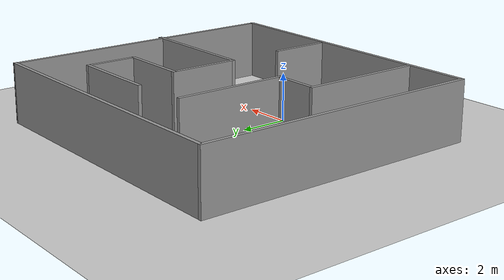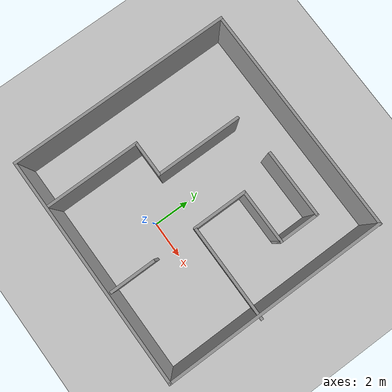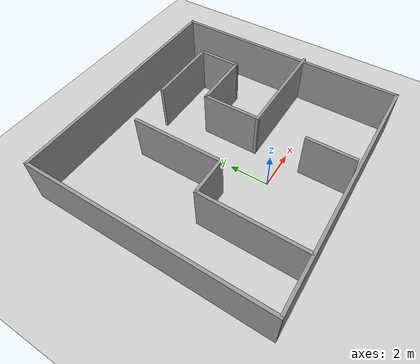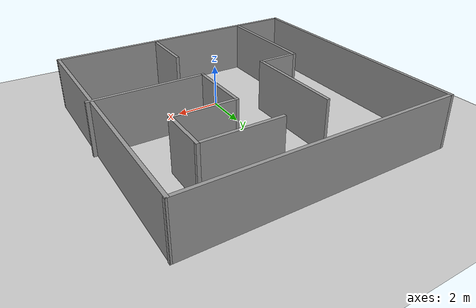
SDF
<sdf version="1.7">
 <world name="default">
  <light name="sun" type="directional">
   <pose>0 0 10 0 -0 0</pose>
   <diffuse>0.8 0.8 0.8 1</diffuse>
   <specular>0.2 0.2 0.2 1</specular>
   <attenuation>
    <range>1000</range>
    <constant>0.9</constant>
    <linear>0.01</linear>
    <quadratic>0.001</quadratic>
   </attenuation>
   <direction>-0.5 0.1 -0.9</direction>
   <spot><inner_angle>0</inner_angle><outer_angle>0</outer_angle><falloff>0</falloff></spot>
  </light>
  <model name="ground_plane">
   <static>1</static>
   <link name="link">
    <collision name="collision">
     <geometry><plane><normal>0 0 1</normal><size>100 100</size></plane></geometry>
     <surface>
      <contact><collide_bitmask>65535</collide_bitmask></contact>
      <friction><ode><mu>100</mu><mu2>50</mu2></ode></friction>
     </surface>
    </collision>
    <visual name="visual">
     <cast_shadows>0</cast_shadows>
     <geometry><plane><normal>0 0 1</normal><size>100 100</size></plane></geometry>
     <material>
      <script><uri>file://media/materials/scripts/gazebo.material</uri><name>Gazebo/Grey</name></script>
     </material>
    </visual>
   </link>
  </model>
  <gravity>0 0 -9.8</gravity>
  <magnetic_field>6e-06 2.3e-05 -4.2e-05</magnetic_field>
  <atmosphere type="adiabatic"/>
  <physics type="ode">
   <max_step_size>0.001</max_step_size>
   <real_time_factor>1</real_time_factor>
   <real_time_update_rate>1000</real_time_update_rate>
  </physics>
  <scene><ambient>0.4 0.4 0.4 1</ambient><background>0.7 0.7 0.7 1</background><shadows>1</shadows></scene>
  <audio><device>default</device></audio>
  <spherical_coordinates>
   <surface_model>EARTH_WGS84</surface_model>
   <latitude_deg>0</latitude_deg>
   <longitude_deg>0</longitude_deg>
   <elevation>0</elevation>
   <heading_deg>0</heading_deg>
  </spherical_coordinates>
  <model name="simple_world">
   <pose>0.218703 2.48564 0 0 -0 0</pose>
   <link name="Wall_11">
    <collision name="Wall_11_Collision">
     <geometry><box><size>5.25 0.15 2.5</size></box></geometry>
     <pose>0 0 1.25 0 -0 0</pose>
    </collision>
    <visual name="Wall_11_Visual">
     <pose>0 0 1.25 0 -0 0</pose>
     <geometry><box><size>5.25 0.15 2.5</size></box></geometry>
     <material>
      <script><uri>file://media/materials/scripts/gazebo.material</uri><name>Gazebo/Grey</name></script>
      <ambient>1 1 1 1</ambient>
     </material>
     <meta><layer>0</layer></meta>
    </visual>
    <pose>-3.69115 -3.43491 0 0 -0 1.5708</pose>
   </link>
   <link name="Wall_12">
    <collision name="Wall_12_Collision">
     <geometry><box><size>2 0.15 2.5</size></box></geometry>
     <pose>0 0 1.25 0 -0 0</pose>
    </collision>
    <visual name="Wall_12_Visual">
     <pose>0 0 1.25 0 -0 0</pose>
     <geometry><box><size>2 0.15 2.5</size></box></geometry>
     <material>
      <script><uri>file://media/materials/scripts/gazebo.material</uri><name>Gazebo/Grey</name></script>
      <ambient>1 1 1 1</ambient>
     </material>
     <meta><layer>0</layer></meta>
    </visual>
    <pose>-2.76615 -0.884914 0 0 -0 0</pose>
   </link>
   <link name="Wall_13">
    <collision name="Wall_13_Collision">
     <geometry><box><size>4.75 0.15 2.5</size></box></geometry>
     <pose>0 0 1.25 0 -0 0</pose>
    </collision>
    <visual name="Wall_13_Visual">
     <pose>0 0 1.25 0 -0 0</pose>
     <geometry><box><size>4.75 0.15 2.5</size></box></geometry>
     <material>
      <script><uri>file://media/materials/scripts/gazebo.material</uri><name>Gazebo/Grey</name></script>
      <ambient>1 1 1 1</ambient>
     </material>
     <meta><layer>0</layer></meta>
    </visual>
    <pose>-1.84115 1.41509 0 0 -0 1.5708</pose>
   </link>
   <link name="Wall_15">
    <collision name="Wall_15_Collision">
     <geometry><box><size>2.5 0.15 2.5</size></box></geometry>
     <pose>0 0 1.25 0 -0 0</pose>
    </collision>
    <visual name="Wall_15_Visual">
     <pose>0 0 1.25 0 -0 0</pose>
     <geometry><box><size>2.5 0.15 2.5</size></box></geometry>
     <material>
      <script><uri>file://media/materials/scripts/gazebo.material</uri><name>Gazebo/Grey</name></script>
      <ambient>1 1 1 1</ambient>
     </material>
     <meta><layer>0</layer></meta>
    </visual>
    <pose>1.28488 -4.65167 0 0 -0 -1.5708</pose>
   </link>
   <link name="Wall_17">
    <collision name="Wall_17_Collision">
     <geometry><box><size>5.25 0.15 2.5</size></box></geometry>
     <pose>0 0 1.25 0 -0 0</pose>
    </collision>
    <visual name="Wall_17_Visual">
     <pose>0 0 1.25 0 -0 0</pose>
     <geometry><box><size>5.25 0.15 2.5</size></box></geometry>
     <material>
      <script><uri>file://media/materials/scripts/gazebo.material</uri><name>Gazebo/Grey</name></script>
      <ambient>1 1 1 1</ambient>
     </material>
     <meta><layer>0</layer></meta>
    </visual>
    <pose>3.75137 -1.00888 0 0 -0 3.14159</pose>
   </link>
   <link name="Wall_18">
    <collision name="Wall_18_Collision">
     <geometry><box><size>3 0.15 2.5</size></box></geometry>
     <pose>0 0 1.25 0 -0 0</pose>
    </collision>
    <visual name="Wall_18_Visual">
     <pose>0 0 1.25 0 -0 0</pose>
     <geometry><box><size>3 0.15 2.5</size></box></geometry>
     <material>
      <script><uri>file://media/materials/scripts/gazebo.material</uri><name>Gazebo/Grey</name></script>
      <ambient>1 1 1 1</ambient>
     </material>
     <meta><layer>0</layer></meta>
    </visual>
    <pose>1.20137 0.416122 0 0 -0 1.5708</pose>
   </link>
   <link name="Wall_19">
    <collision name="Wall_19_Collision">
     <geometry><box><size>3 0.15 2.5</size></box></geometry>
     <pose>0 0 1.25 0 -0 0</pose>
    </collision>
    <visual name="Wall_19_Visual">
     <pose>0 0 1.25 0 -0 0</pose>
     <geometry><box><size>3 0.15 2.5</size></box></geometry>
     <material>
      <script><uri>file://media/materials/scripts/gazebo.material</uri><name>Gazebo/Grey</name></script>
      <ambient>1 1 1 1</ambient>
     </material>
     <meta><layer>0</layer></meta>
    </visual>
    <pose>2.62637 1.84112 0 0 -0 0</pose>
   </link>
   <link name="Wall_20">
    <collision name="Wall_20_Collision">
     <geometry><box><size>2.25 0.15 2.5</size></box></geometry>
     <pose>0 0 1.25 0 -0 0</pose>
    </collision>
    <visual name="Wall_20_Visual">
     <pose>0 0 1.25 0 -0 0</pose>
     <geometry><box><size>2.25 0.15 2.5</size></box></geometry>
     <material>
      <script><uri>file://media/materials/scripts/gazebo.material</uri><name>Gazebo/Grey</name></script>
      <ambient>1 1 1 1</ambient>
     </material>
     <meta><layer>0</layer></meta>
    </visual>
    <pose>4.05137 2.89112 0 0 -0 1.5708</pose>
   </link>
   <link name="Wall_21">
    <collision name="Wall_21_Collision">
     <geometry><box><size>3.75 0.15 2.5</size></box></geometry>
     <pose>0 0 1.25 0 -0 0</pose>
    </collision>
    <visual name="Wall_21_Visual">
     <pose>0 0 1.25 0 -0 0</pose>
     <geometry><box><size>3.75 0.15 2.5</size></box></geometry>
     <material>
      <script><uri>file://media/materials/scripts/gazebo.material</uri><name>Gazebo/Grey</name></script>
      <ambient>1 1 1 1</ambient>
     </material>
     <meta><layer>0</layer></meta>
    </visual>
    <pose>2.25137 3.94112 0 0 -0 3.14159</pose>
   </link>
   <link name="Wall_3">
    <collision name="Wall_3_Collision">
     <geometry><box><size>12.5 0.15 2.5</size></box></geometry>
     <pose>0 0 1.25 0 -0 0</pose>
    </collision>
    <visual name="Wall_3_Visual">
     <pose>0 0 1.25 0 -0 0</pose>
     <geometry><box><size>12.5 0.15 2.5</size></box></geometry>
     <material>
      <script><uri>file://media/materials/scripts/gazebo.material</uri><name>Gazebo/Grey</name></script>
      <ambient>1 1 1 1</ambient>
     </material>
     <meta><layer>0</layer></meta>
    </visual>
    <pose>-0.020767 -6.05025 0 0 -0 0</pose>
   </link>
   <link name="Wall_4">
    <collision name="Wall_4_Collision">
     <geometry><box><size>12.25 0.15 2.5</size></box></geometry>
     <pose>0 0 1.25 0 -0 0</pose>
    </collision>
    <visual name="Wall_4_Visual">
     <pose>0 0 1.25 0 -0 0</pose>
     <geometry><box><size>12.25 0.15 2.5</size></box></geometry>
     <material>
      <script><uri>file://media/materials/scripts/gazebo.material</uri><name>Gazebo/Grey</name></script>
      <ambient>1 1 1 1</ambient>
     </material>
     <meta><layer>0</layer></meta>
    </visual>
    <pose>6.1311 -0.000247 0 0 -0 1.57462</pose>
   </link>
   <link name="Wall_5">
    <collision name="Wall_5_Collision">
     <geometry><box><size>12.5 0.15 2.5</size></box></geometry>
     <pose>0 0 1.25 0 -0 0</pose>
    </collision>
    <visual name="Wall_5_Visual">
     <pose>0 0 1.25 0 -0 0</pose>
     <geometry><box><size>12.5 0.15 2.5</size></box></geometry>
     <material>
      <script><uri>file://media/materials/scripts/gazebo.material</uri><name>Gazebo/Grey</name></script>
      <ambient>1 1 1 1</ambient>
     </material>
     <meta><layer>0</layer></meta>
    </visual>
    <pose>-0.043898 6.04975 0 0 -0 3.14159</pose>
   </link>
   <link name="Wall_9">
    <collision name="Wall_9_Collision">
     <geometry><box><size>12.25 0.15 2.5</size></box></geometry>
     <pose>0 0 1.25 0 -0 0</pose>
    </collision>
    <visual name="Wall_9_Visual">
     <pose>0 0 1.25 0 -0 0</pose>
     <geometry><box><size>12.25 0.15 2.5</size></box></geometry>
     <material>
      <script><uri>file://media/materials/scripts/gazebo.material</uri><name>Gazebo/Grey</name></script>
      <ambient>1 1 1 1</ambient>
     </material>
     <meta><layer>0</layer></meta>
    </visual>
    <pose>-6.30137 0.000487 0 0 -0 1.5708</pose>
   </link>
   <static>1</static>
  </model>
 </world>
</sdf>
